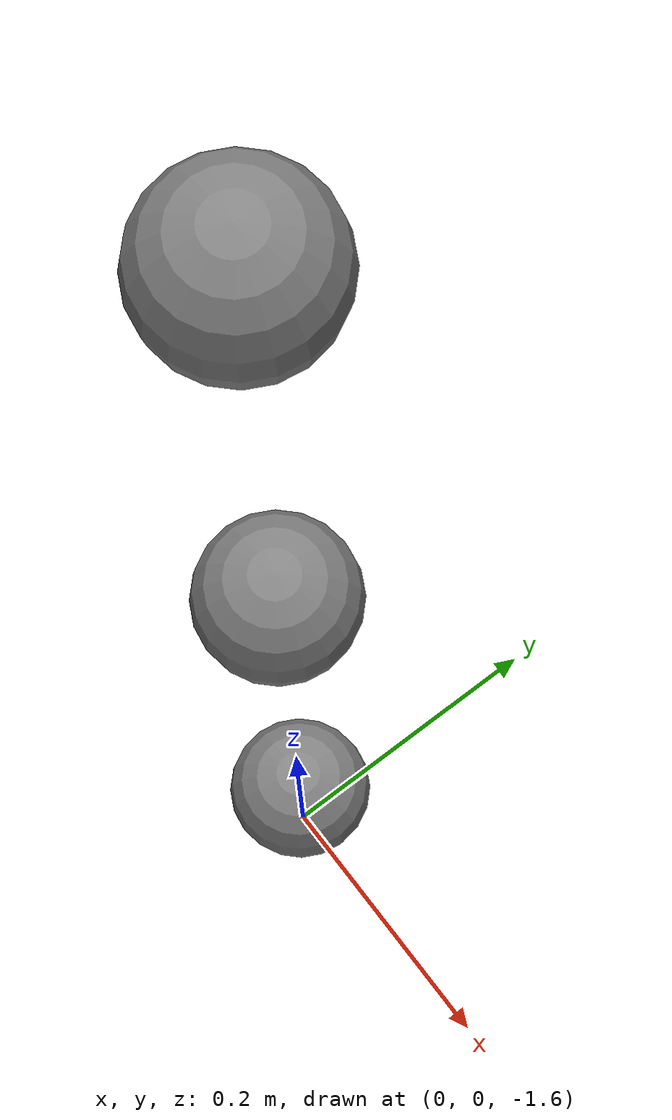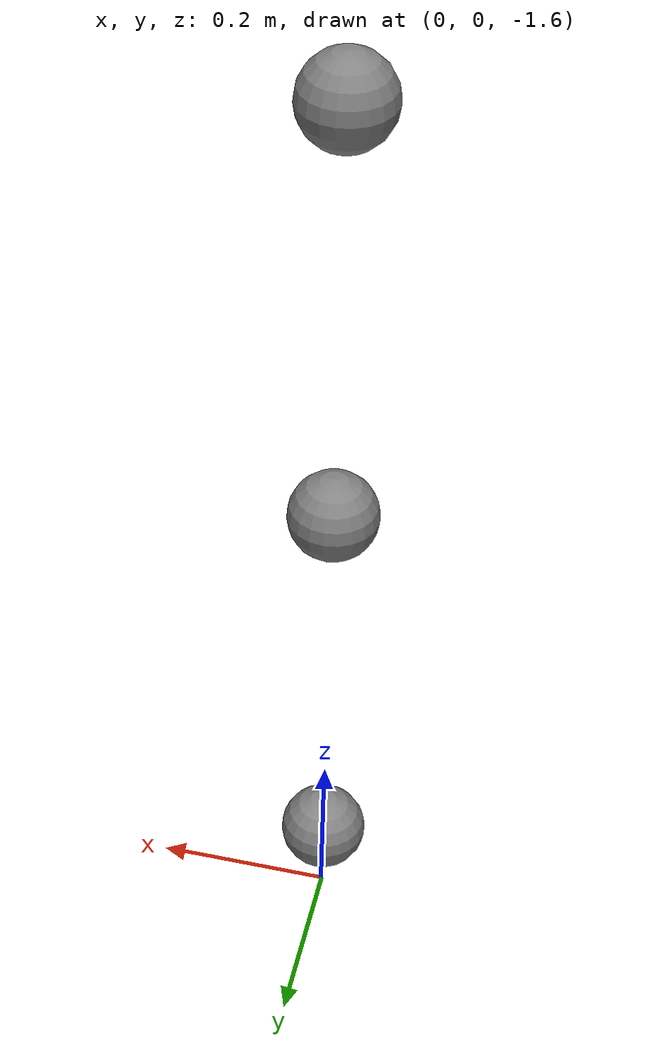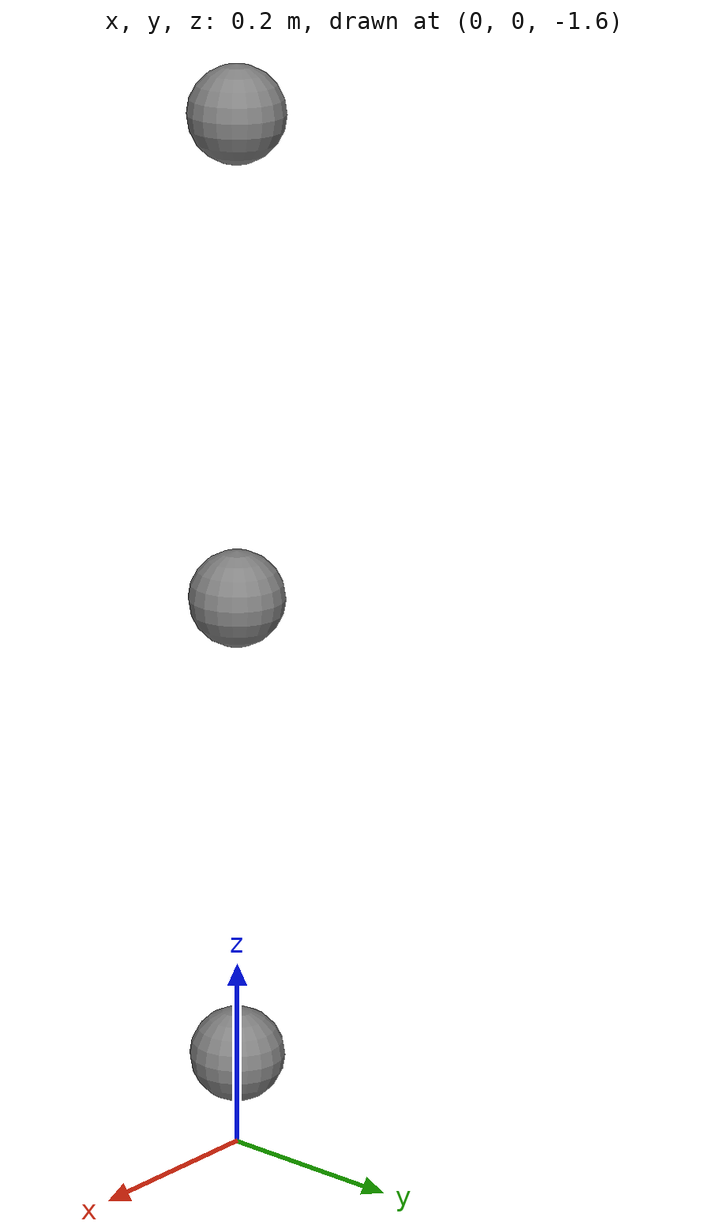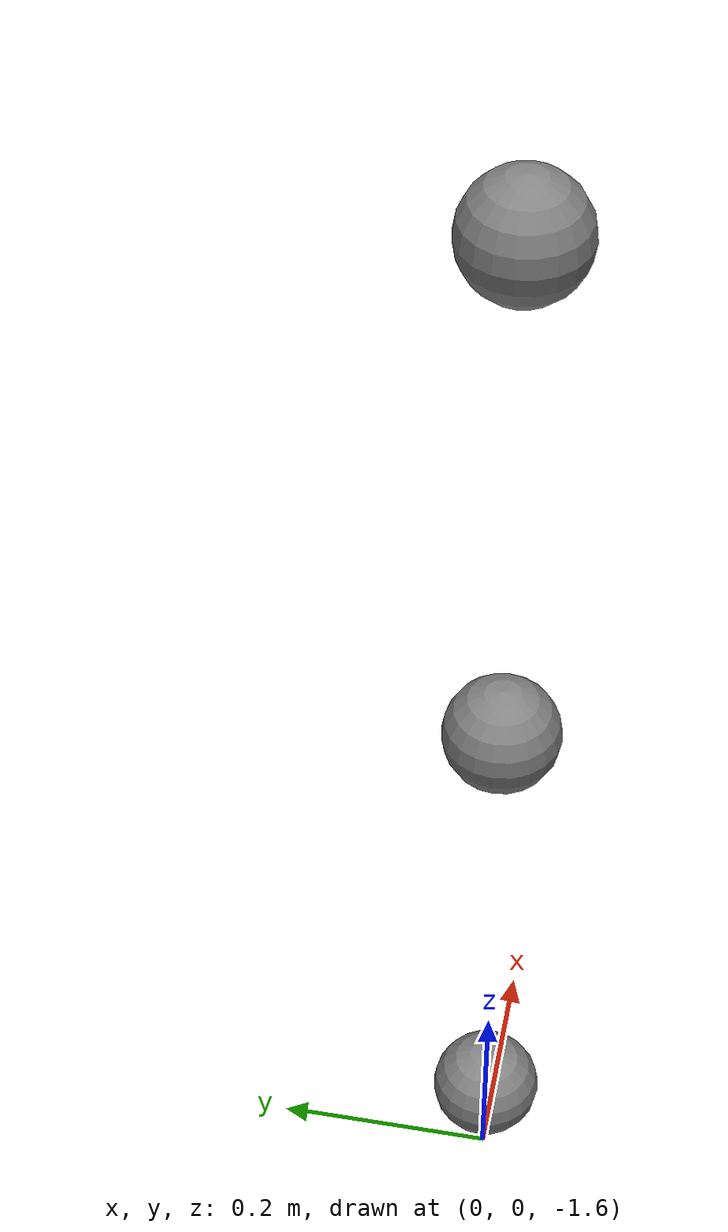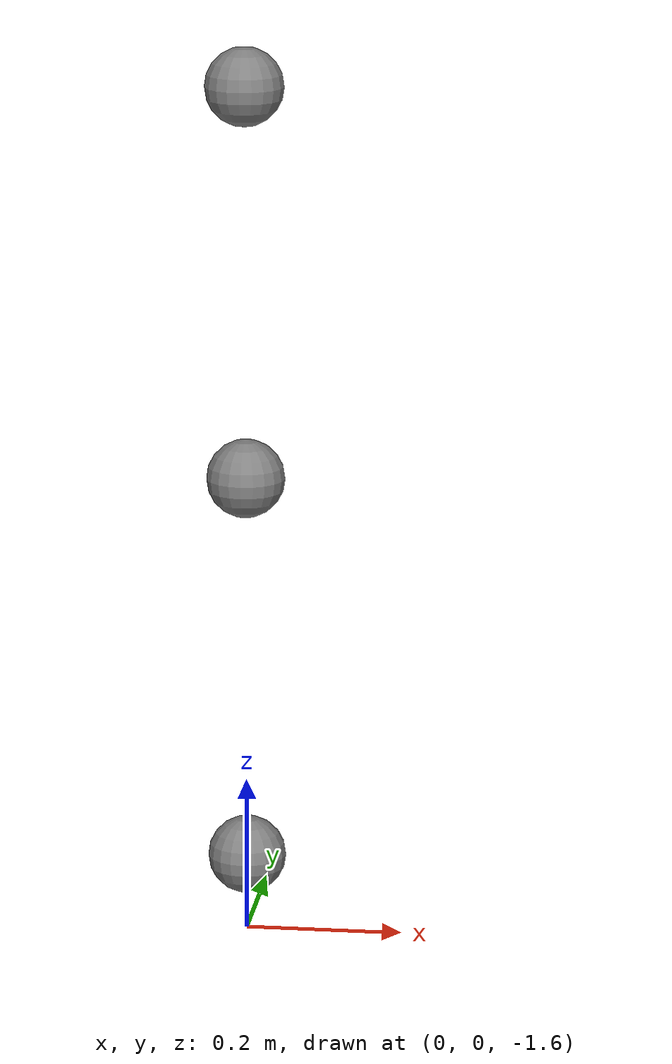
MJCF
<mujoco model="make_data_test">
            <option gravity="0 0 -9.81" timestep="0.001"/>
            <worldbody>
                <body name="link1" pos="0 0 -0.5">
                    <joint type="hinge" axis="0 1 0"/>
                    <geom type="sphere" size="0.05" mass="1.0"/>
                    <body name="link2" pos="0 0 -0.5">
                        <joint type="hinge" axis="0 1 0"/>
                        <geom type="sphere" size="0.05" mass="1.0"/>
                        <body name="link3" pos="0 0 -0.5">
                            <joint type="hinge" axis="0 1 0"/>
                            <geom type="sphere" size="0.05" mass="1.0"/>
                        </body>
                    </body>
                </body>
            </worldbody>
        </mujoco>
